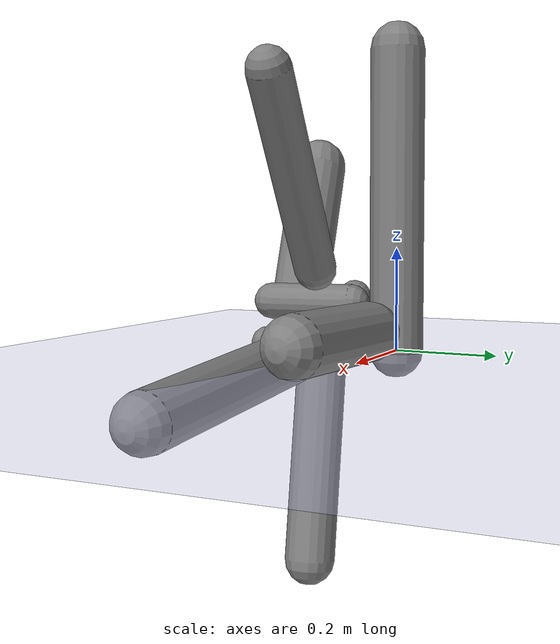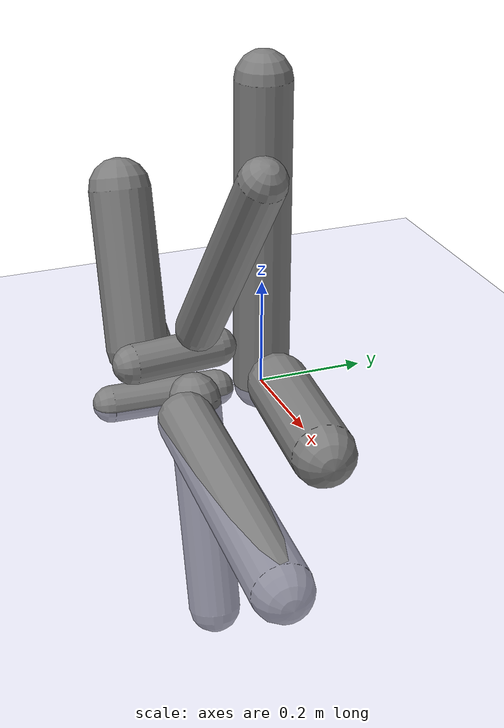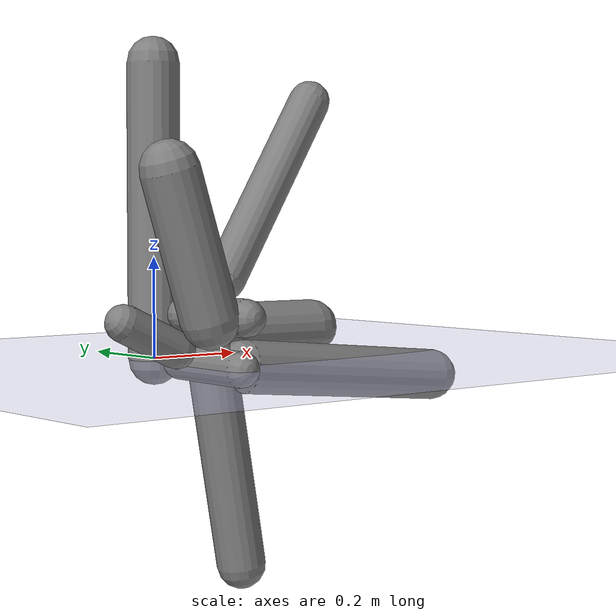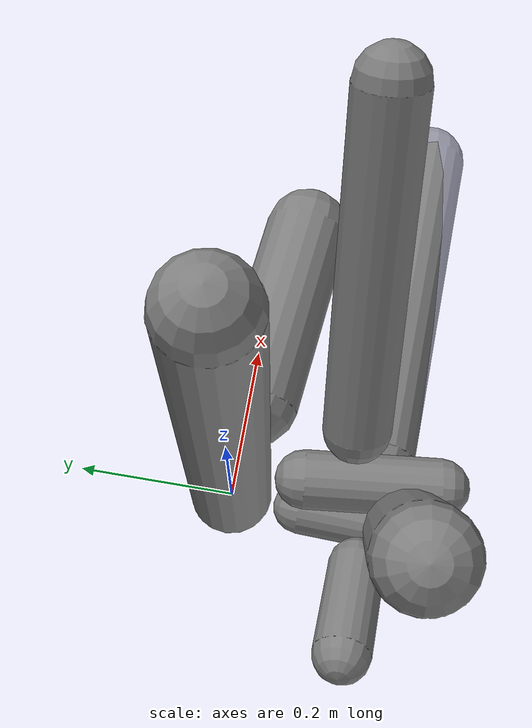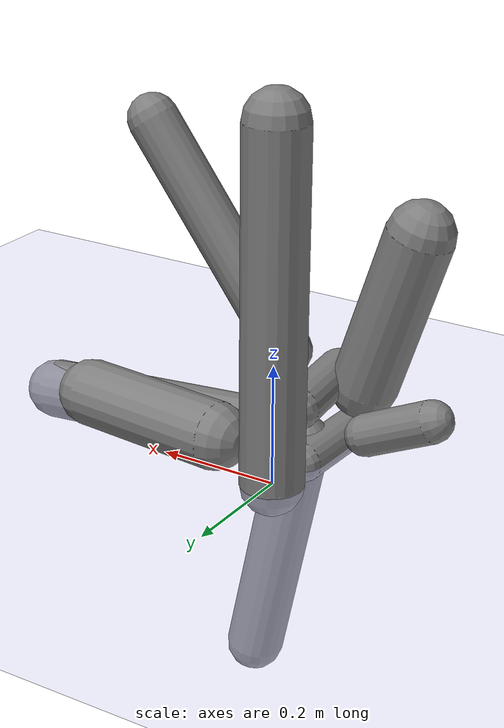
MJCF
<?xml version='1.0' encoding='UTF-8'?>
<mujoco model="robot_model">
  <worldbody>
    <light name="light" pos="0 -3 10" dir="0 0.5 -1" diffuse=".8 .8 .8" specular="0.1 0.1 0.1"/>
    <geom name="floor" type="plane" size="10.0 10.0 0.1" pos="0 0 0" rgba="0.8 0.8 1 1" contype="2" conaffinity="1"/>
    <body name="limb0" pos="0 0 0">
      <geom name="limb0_geom" type="capsule" fromto="0 0 0 0 0 0.5800224199674703" size="0.05207468474230135" density="951.0135327268317" contype="1" conaffinity="2"/>
      <site type="sphere" size="0.01" name="limb0_site0" pos="0.009419947171992814 -0.09225996779355408 0.0916248947854197" quat="0.7071067811865476 0.7034496051453099 0.07182376362254696 0.0"/>
      <site type="sphere" size="0.01" name="limb0_site1" pos="-0.0031817630180951345 -0.09007976937631487 0.00017440700347770208" quat="0.7071067811865476 0.7066660944373666 -0.024960588387271467 0.0"/>
      <site type="sphere" size="0.01" name="limb0_site2" pos="0.11203267374669594 -0.011450251372115134 0.04851112407725351" quat="0.7071067811865476 0.07189502123276892 0.7034423259386228 0.0"/>
      <freejoint name="limb0_root"/>
      <body name="limb1" pos="0.009419947171992814 -0.09225996779355408 0.0916248947854197" quat="0.7071067811865476 0.7034496051453099 0.07182376362254696 0.0">
        <geom name="limb1_geom" type="capsule" fromto="0 0 0 0 0 0.16575957466304" size="0.036664934957106377" density="966.3771865965051" contype="1" conaffinity="2"/>
        <site type="sphere" size="0.01" name="limb1_site0" pos="0.02570960320879841 -0.08520748956094068 0.05342211041241877" quat="0.7071067811865476 0.6769623914226275 0.2042594443333214 0.0"/>
        <site type="sphere" size="0.01" name="limb1_site1" pos="0.03901865773742936 0.072066419043615 0.05810781642842336" quat="0.7071067811865476 -0.6218158844110192 0.33666750050181826 0.0"/>
        <body name="limb2" pos="0.02570960320879841 -0.08520748956094068 0.05342211041241877" quat="0.7071067811865476 0.6769623914226275 0.2042594443333214 0.0">
          <geom name="limb2_geom" type="capsule" fromto="0 0 0 0 0 0.4156618494820584" size="0.04833675027655464" density="1039.3571037728918" contype="1" conaffinity="2"/>
          <joint name="joint_limb1_limb2_0" type="hinge" axis="0 0 1" range="-72.11582772818501 72.11582772818501" damping="5.0"/>
        </body>
        <body name="limb3" pos="0.03901865773742936 0.072066419043615 0.05810781642842336" quat="0.7071067811865476 -0.6218158844110192 0.33666750050181826 0.0">
          <geom name="limb3_geom" type="capsule" fromto="0 0 0 0 0 0.425297638145677" size="0.041286418938973765" density="1197.6082344579934" contype="1" conaffinity="2"/>
          <joint name="joint_limb1_limb3_0" type="hinge" axis="0 0 1" range="-59.16747994539028 59.16747994539028" damping="5.0"/>
        </body>
        <joint name="joint_limb0_limb1_0" type="hinge" axis="1 0 0" range="-70.74698605445272 70.74698605445272" damping="5.0"/>
      </body>
      <body name="limb4" pos="-0.0031817630180951345 -0.09007976937631487 0.00017440700347770208" quat="0.7071067811865476 0.7066660944373666 -0.024960588387271467 0.0">
        <geom name="limb4_geom" type="capsule" fromto="0 0 0 0 0 0.19836517578497903" size="0.03406125962393577" density="799.5604343836054" contype="1" conaffinity="2"/>
        <site type="sphere" size="0.01" name="limb4_site0" pos="0.09016611006153107 -0.011569843723560494 0.08412795753665127" quat="0.7071067811865476 0.0899959350022646 0.7013563514242015 0.0"/>
        <site type="sphere" size="0.01" name="limb4_site1" pos="-0.025781962043266847 0.09103430365001546 0.13916677193207908" quat="0.7071067811865476 -0.6803480675143211 -0.19268239937661344 0.0"/>
        <site type="sphere" size="0.01" name="limb4_site2" pos="-0.0654143113987107 0.033986567902243296 0.08500733470009711" quat="0.7071067811865476 -0.3260076134473962 -0.6274703466892543 0.0"/>
        <body name="limb5" pos="0.09016611006153107 -0.011569843723560494 0.08412795753665127" quat="0.7071067811865476 0.0899959350022646 0.7013563514242015 0.0">
          <geom name="limb5_geom" type="capsule" fromto="0 0 0 0 0 0.49273132914871753" size="0.05284412353578555" density="1075.0324498949815" contype="1" conaffinity="2"/>
          <joint name="joint_limb4_limb5_0" type="hinge" axis="0 1 0" range="-70.36769792005789 70.36769792005789" damping="5.0"/>
        </body>
        <body name="limb6" pos="-0.025781962043266847 0.09103430365001546 0.13916677193207908" quat="0.7071067811865476 -0.6803480675143211 -0.19268239937661344 0.0">
          <geom name="limb6_geom" type="capsule" fromto="0 0 0 0 0 0.29045882878750123" size="0.05655350670692651" density="1091.0289928776679" contype="1" conaffinity="2"/>
          <joint name="joint_limb4_limb6_0" type="hinge" axis="1 0 0" range="-77.0684785859499 77.0684785859499" damping="5.0"/>
        </body>
        <body name="limb7" pos="-0.0654143113987107 0.033986567902243296 0.08500733470009711" quat="0.7071067811865476 -0.3260076134473962 -0.6274703466892543 0.0">
          <geom name="limb7_geom" type="capsule" fromto="0 0 0 0 0 0.12949640535912238" size="0.035655217052186564" density="780.9335705735965" contype="1" conaffinity="2"/>
          <joint name="joint_limb4_limb7_0" type="hinge" axis="1 0 0" range="-32.269066017607344 32.269066017607344" damping="5.0"/>
        </body>
        <joint name="joint_limb0_limb4_0" type="hinge" axis="1 0 0" range="-33.893167912019756 33.893167912019756" damping="5.0"/>
      </body>
      <body name="limb8" pos="0.11203267374669594 -0.011450251372115134 0.04851112407725351" quat="0.7071067811865476 0.07189502123276892 0.7034423259386228 0.0">
        <geom name="limb8_geom" type="capsule" fromto="0 0 0 0 0 0.263523224913811" size="0.05654160290437184" density="1131.6696911761892" contype="1" conaffinity="2"/>
        <joint name="joint_limb0_limb8_0" type="hinge" axis="1 0 0" range="-29.67395081842948 29.67395081842948" damping="5.0"/>
      </body>
    </body>
  </worldbody>
  <actuator>
    <position name="position_actuator_joint_limb0_limb1_0" joint="joint_limb0_limb1_0" gear="1.6844985986898056" inheritrange="1" forcerange="-38.097019095602974 38.097019095602974" forcelimited="true" kp="100.0"/>
    <position name="position_actuator_joint_limb1_limb2_0" joint="joint_limb1_limb2_0" gear="1.1734759715148397" inheritrange="1" forcerange="-18.313910369357625 18.313910369357625" forcelimited="true" kp="100.0"/>
    <position name="position_actuator_joint_limb1_limb3_0" joint="joint_limb1_limb3_0" gear="1.6295749847985146" inheritrange="1" forcerange="-15.402933381738091 15.402933381738091" forcelimited="true" kp="100.0"/>
    <position name="position_actuator_joint_limb0_limb4_0" joint="joint_limb0_limb4_0" gear="1.5556786539001968" inheritrange="1" forcerange="-52.92435946604856 52.92435946604856" forcelimited="true" kp="100.0"/>
    <position name="position_actuator_joint_limb4_limb5_0" joint="joint_limb4_limb5_0" gear="1.6301698078758577" inheritrange="1" forcerange="-26.557666178162428 26.557666178162428" forcelimited="true" kp="100.0"/>
    <position name="position_actuator_joint_limb4_limb6_0" joint="joint_limb4_limb6_0" gear="0.6407677301499594" inheritrange="1" forcerange="-20.05369185431183 20.05369185431183" forcelimited="true" kp="100.0"/>
    <position name="position_actuator_joint_limb4_limb7_0" joint="joint_limb4_limb7_0" gear="1.900653364935264" inheritrange="1" forcerange="-2.76085394119477 2.76085394119477" forcelimited="true" kp="100.0"/>
    <position name="position_actuator_joint_limb0_limb8_0" joint="joint_limb0_limb8_0" gear="1.6181372120125024" inheritrange="1" forcerange="-19.260288017456016 19.260288017456016" forcelimited="true" kp="100.0"/>
  </actuator>
  <contact>
    <pair geom1="limb0_geom" geom2="limb1_geom"/>
    <pair geom1="limb1_geom" geom2="limb2_geom"/>
    <pair geom1="limb1_geom" geom2="limb3_geom"/>
    <pair geom1="limb0_geom" geom2="limb4_geom"/>
    <pair geom1="limb4_geom" geom2="limb5_geom"/>
    <pair geom1="limb4_geom" geom2="limb6_geom"/>
    <pair geom1="limb4_geom" geom2="limb7_geom"/>
    <pair geom1="limb0_geom" geom2="limb8_geom"/>
  </contact>
</mujoco>
